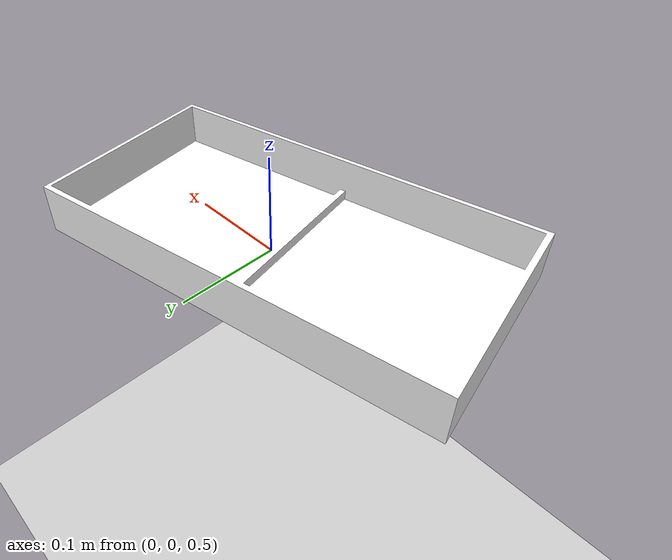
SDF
<?xml version="1.0"?>
<sdf version="1.5">
  <world name="fluid_world">

	<gui>
	  <camera name="fluid_camera">
		<pose>-3 0 2 0 0.4 0</pose>
	  </camera>
	</gui>

    <include>
      <uri>model://ground_plane</uri>
        <pose>0.0 0.0 0.0 0.0 0.0 0.0</pose>
    </include>

    <include>
      <uri>model://sun_vertical</uri>
    </include>

    <include>
      <uri>model://box2</uri>
      <pose>0 0.0 0.5 0.0 0.0 0.2</pose>
    </include>

    <plugin name="FluidWorldPlugin" filename="libFluidWorldPlugin.so">
		<world_position>0 0 5.01</world_position>
		<world_size>1.5 1 10</world_size>
		<fluid_position>-0.5 0.0 0.8</fluid_position>
		<fluid_volume>0.4 0.95 0.5</fluid_volume>
		<particle_nr>0</particle_nr>
	</plugin>

  </world>
</sdf>

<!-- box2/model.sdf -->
<sdf version='1.6'>
  <model name='box2'>
    <link name="body">
      <visual name="visual">
        <pose frame=''>0 0 0.015 0 -0 0</pose>
        <geometry>
          <mesh><uri>model://box2/box2.stl</uri>
            <scale>1 1 1</scale>

          </mesh>
        </geometry>
        <material>
          <script>
            <uri>model://box2/materials/scripts</uri>
            <uri>model://box2/materials/textures</uri>
            <name>box2color</name>
          </script>
          <shader type='vertex'>
            <normal_map>__default__</normal_map>
          </shader>
          <ambient>1 1 1 1</ambient>
          <diffuse>1 1 1 1</diffuse>
          <specular>0 0 0 1</specular>
          <emissive>0 0 0 1</emissive>
        </material>
      </visual>

      <collision name='collision_0'>
        <laser_retro>0</laser_retro>
        <max_contacts>10</max_contacts>
        <pose frame=''>-0.005 0 0.0 0 -0 0</pose>
        <geometry>
          <box>
            <size>0.42 0.21 0.005</size>
          </box>
        </geometry>
        <surface>
          <friction>
            <ode>
              <mu>1</mu>
              <mu2>1</mu2>
              <fdir1>0 0 0</fdir1>
              <slip1>0</slip1>
              <slip2>0</slip2>
            </ode>
            <torsional>
              <coefficient>1</coefficient>
              <patch_radius>0</patch_radius>
              <surface_radius>0</surface_radius>
              <use_patch_radius>1</use_patch_radius>
              <ode>
                <slip>0</slip>
              </ode>
            </torsional>
          </friction>
          <bounce>
            <restitution_coefficient>0</restitution_coefficient>
            <threshold>1e+06</threshold>
          </bounce>
          <contact>
            <collide_without_contact>0</collide_without_contact>
            <collide_without_contact_bitmask>1</collide_without_contact_bitmask>
            <collide_bitmask>1</collide_bitmask>
            <ode>
              <soft_cfm>0</soft_cfm>
              <soft_erp>0.2</soft_erp>
              <kp>1e+13</kp>
              <kd>1</kd>
              <max_vel>0.01</max_vel>
              <min_depth>0</min_depth>
            </ode>
            <bullet>
              <split_impulse>1</split_impulse>
              <split_impulse_penetration_threshold>-0.01</split_impulse_penetration_threshold>
              <soft_cfm>0</soft_cfm>
              <soft_erp>0.2</soft_erp>
              <kp>1e+13</kp>
              <kd>1</kd>
            </bullet>
          </contact>
        </surface>
      </collision>
    </link>
    <static>1</static>
  </model>
</sdf>
